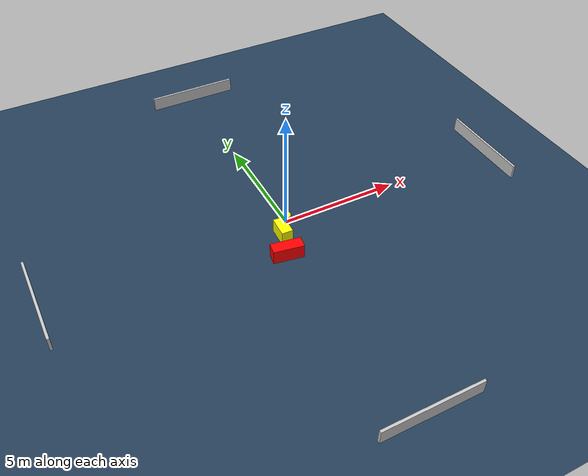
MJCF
<?xml version="1.0" ?>
<mujoco model="generated_environment">
  <option timestep="0.01" integrator="RK4" cone="elliptic"/>
  <default>
    <geom density="1"/>
  </default>
  <asset>
    <texture builtin="gradient" height="3072" name="skybox" rgb1="0.3 0.5 0.7" rgb2="0 0 0" type="skybox" width="512"/>
    <texture builtin="checker" height="300" name="groundplane" rgb1="0.2 0.3 0.4" rgb2="0.1 0.2 0.3" type="2d" width="300"/>
    <material name="groundplane" reflectance="0.2" texrepeat="5 5" texture="groundplane"/>
  </asset>
  <worldbody>
    <light dir="0 0 -1" directional="true" pos="0 0 1.5"/>
    <geom condim="3" friction="0.5 0.005 0.001" material="groundplane" name="floor" pos="0 0 0" size="0 0 0.05" type="plane"/>
    <body name="walls">
      <geom name="wall_1" condim="4" pos="-10.0 0.0 0.3" rgba="0.800000011920929 0.800000011920929 0.800000011920929 1.0" size="0.05 2.0 0.3" type="box"/>
      <geom name="wall_2" condim="4" pos="10.0 0.0 0.3" rgba="0.800000011920929 0.800000011920929 0.800000011920929 1.0" size="0.05 2.0 0.3" type="box"/>
      <geom name="wall_3" condim="4" pos="0.0 -10.0 0.3" rgba="0.800000011920929 0.800000011920929 0.800000011920929 1.0" size="2.0 0.05 0.3" type="box"/>
      <geom name="wall_4" condim="4" pos="0.0 10.0 0.3" rgba="0.800000011920929 0.800000011920929 0.800000011920929 1.0" size="2.0 0.05 0.3" type="box"/>
    </body>
    <body name="robot">
      <joint name="joint_x" type="slide" pos="0 0 0" axis="1 0 0"/>
      <joint name="joint_y" type="slide" pos="0 0 0" axis="0 1 0"/>
      <geom name="robot" type="cylinder" pos="0.0 0.0 0.2" size="0.2 0.2 0.0" mass="5.0" friction="1.0 0.005 0.0001" condim="4" rgba="1.0 1.0 0.0 1.0"/>
    </body>
    <body name="obstacle_1_movable">
      <geom name="obstacle_1_movable" condim="4" pos="-0.4817963970638247 -0.6797241323022835 0.3" euler="0 0 87.46966739175238" friction="0.0 0.005 0.001" rgba="1.0 1.0 0.0 1.0" size="0.431669991561848 0.23569203241851683 0.3" type="box" mass="0.1"/>
      <joint type="free"/>
    </body>
    <body name="obstacle_2_static">
      <geom name="obstacle_2_static" condim="4" pos="-0.835400932164 -1.729981578513839 0.3" euler="0 0 260.83191049882026" friction="0.0 0.005 0.001" rgba="1.0 0.0 0.0 1.0" size="0.24355389020899362 0.6225453802298171 0.3" type="box"/>
    </body>
  </worldbody>
  <actuator>
    <motor name="actuator_x" joint="joint_x" gear="1" ctrlrange="-1 1"/>
    <motor name="actuator_y" joint="joint_y" gear="1" ctrlrange="-1 1"/>
  </actuator>
</mujoco>
